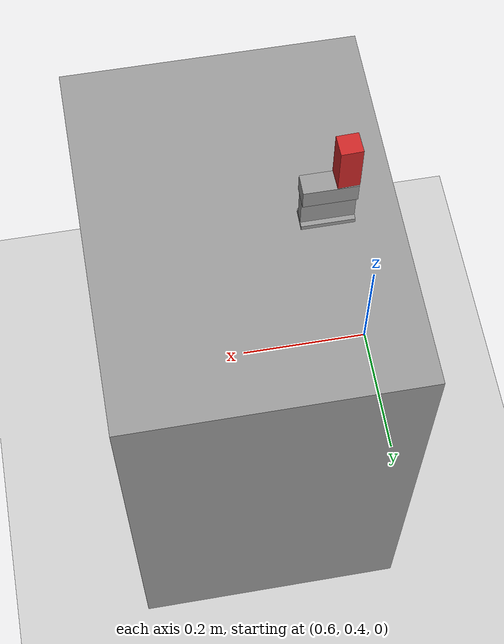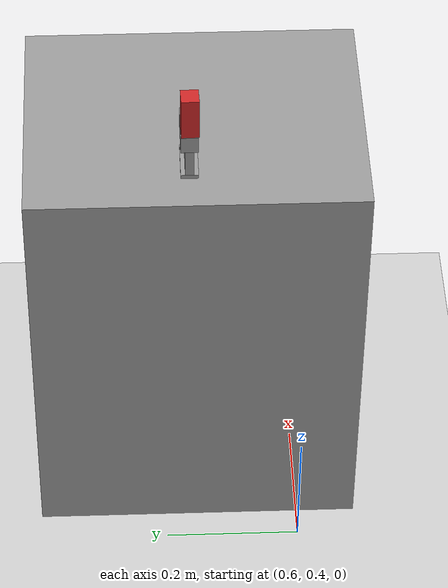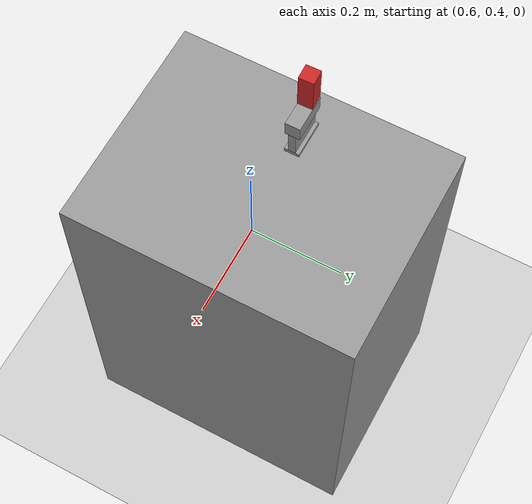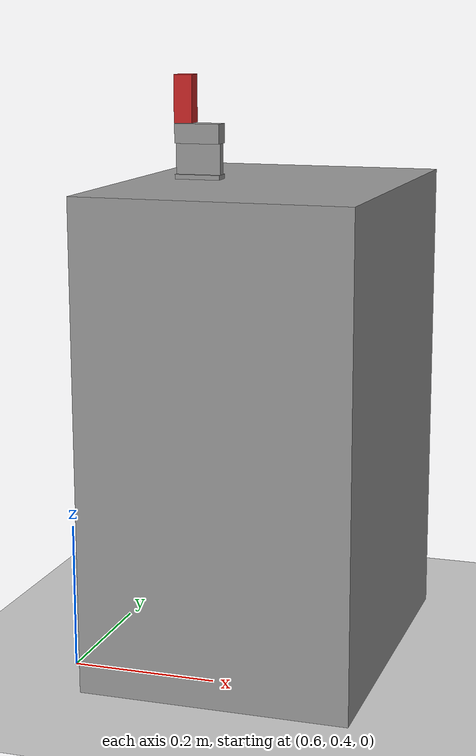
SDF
<sdf version="1.6">
 <world name="default">
  <model name="ground_plane">
   <static>1</static>
   <link name="link">
    <collision name="collision">
     <geometry><plane><normal>0 0 1</normal><size>100 100</size></plane></geometry>
     <surface><friction><ode><mu>100</mu><mu2>50</mu2></ode></friction></surface>
    </collision>
    <visual name="visual">
     <cast_shadows>0</cast_shadows>
     <geometry><plane><normal>0 0 1</normal><size>100 100</size></plane></geometry>
     <material>
      <script><uri>file://media/materials/scripts/gazebo.material</uri><name>Gazebo/Grey</name></script>
     </material>
    </visual>
   </link>
  </model>
  <light name="sun" type="directional">
   <pose>0 0 10 0 -0 0</pose>
   <diffuse>0.8 0.8 0.8 1</diffuse>
   <specular>0.2 0.2 0.2 1</specular>
   <attenuation>
    <range>1000</range>
    <constant>0.9</constant>
    <linear>0.01</linear>
    <quadratic>0.001</quadratic>
   </attenuation>
   <direction>-0.5 0.1 -0.9</direction>
  </light>
  <physics name="default_physics" default="0" type="ode">
   <real_time_update_rate>1000</real_time_update_rate>
   <max_step_size>0.001</max_step_size>
   <real_time_factor>1</real_time_factor>
  </physics>
  <gravity>0 0 -9.81</gravity>
  <magnetic_field>6e-06 2.3e-05 -4.2e-05</magnetic_field>
  <atmosphere type="adiabatic"/>
  <scene><ambient>0.4 0.4 0.4 1</ambient><background>0.7 0.7 0.7 1</background><shadows>1</shadows></scene>
  <spherical_coordinates>
   <surface_model>EARTH_WGS84</surface_model>
   <latitude_deg>0</latitude_deg>
   <longitude_deg>0</longitude_deg>
   <elevation>0</elevation>
   <heading_deg>0</heading_deg>
  </spherical_coordinates>
  <model name="table">
   <link name="link_2">
    <inertial>
     <mass>1</mass>
     <inertia>
      <ixx>0.166667</ixx>
      <ixy>0</ixy>
      <ixz>0</ixz>
      <iyy>0.166667</iyy>
      <iyz>0</iyz>
      <izz>0.166667</izz>
     </inertia>
    </inertial>
    <visual name="visual">
     <geometry><box><size>0.3683 0.4826 0.6604</size></box></geometry>
     <material>
      <lighting>1</lighting>
      <script><uri>file://media/materials/scripts/gazebo.material</uri><name>Gazebo/Grey</name></script>
      <shader type="pixel"><normal_map>__default__</normal_map></shader>
      <ambient>0.3 0.3 0.3 1</ambient>
      <diffuse>0.7 0.7 0.7 1</diffuse>
      <specular>0.01 0.01 0.01 1</specular>
      <emissive>0 0 0 1</emissive>
     </material>
    </visual>
    <collision name="collision">
     <geometry><box><size>0.3683 0.4826 0.6604</size></box></geometry>
     <surface>
      <friction>
       <ode><mu>1</mu><mu2>1</mu2><fdir1>0 0 0</fdir1><slip1>0</slip1><slip2>0</slip2></ode>
       <torsional>
        <coefficient>1</coefficient>
        <patch_radius>0</patch_radius>
        <surface_radius>0</surface_radius>
        <use_patch_radius>1</use_patch_radius>
        <ode><slip>0</slip></ode>
       </torsional>
      </friction>
      <bounce><restitution_coefficient>0</restitution_coefficient><threshold>1e+06</threshold></bounce>
      <contact>
       <collide_without_contact>0</collide_without_contact>
       <collide_without_contact_bitmask>1</collide_without_contact_bitmask>
       <collide_bitmask>1</collide_bitmask>
       <ode>
        <soft_cfm>0</soft_cfm>
        <soft_erp>0.2</soft_erp>
        <kp>1e+13</kp>
        <kd>1</kd>
        <max_vel>0.01</max_vel>
        <min_depth>0</min_depth>
       </ode>
       <bullet>
        <split_impulse>1</split_impulse>
        <split_impulse_penetration_threshold>-0.01</split_impulse_penetration_threshold>
        <soft_cfm>0</soft_cfm>
        <soft_erp>0.2</soft_erp>
        <kp>1e+13</kp>
        <kd>1</kd>
       </bullet>
      </contact>
     </surface>
    </collision>
   </link>
   <static>0</static>
   <pose>0.827633 0.552391 0.330199 0 7e-06 -7e-06</pose>
  </model>
  <model name="nerf">
   <link name="link_0">
    <inertial>
     <mass>0.0125</mass>
     <inertia>
      <ixx>6.9e-07</ixx>
      <ixy>0</ixy>
      <ixz>0</ixz>
      <iyy>4.24e-06</iyy>
      <iyz>0</iyz>
      <izz>4.85e-06</izz>
     </inertia>
    </inertial>
    <pose>-0 -0 -0.027558 0 -0 0</pose>
    <visual name="visual">
     <geometry><box><size>0.0635 0.025 0.00635</size></box></geometry>
     <material>
      <lighting>1</lighting>
      <script><uri>file://media/materials/scripts/gazebo.material</uri><name>Gazebo/Grey</name></script>
      <shader type="pixel"><normal_map>__default__</normal_map></shader>
      <ambient>0.3 0.3 0.3 1</ambient>
      <diffuse>0.7 0.7 0.7 1</diffuse>
      <specular>0.01 0.01 0.01 1</specular>
      <emissive>0 0 0 1</emissive>
     </material>
    </visual>
    <collision name="collision">
     <geometry><box><size>0.0635 0.025 0.00635</size></box></geometry>
     <surface>
      <friction>
       <ode><mu>1</mu><mu2>1</mu2><fdir1>0 0 0</fdir1><slip1>0</slip1><slip2>0</slip2></ode>
       <torsional>
        <coefficient>1</coefficient>
        <patch_radius>0</patch_radius>
        <surface_radius>0</surface_radius>
        <use_patch_radius>1</use_patch_radius>
        <ode><slip>0</slip></ode>
       </torsional>
      </friction>
      <bounce><restitution_coefficient>0</restitution_coefficient><threshold>1e+06</threshold></bounce>
      <contact>
       <collide_without_contact>0</collide_without_contact>
       <collide_without_contact_bitmask>1</collide_without_contact_bitmask>
       <collide_bitmask>1</collide_bitmask>
       <ode>
        <soft_cfm>0</soft_cfm>
        <soft_erp>0.2</soft_erp>
        <kp>1e+13</kp>
        <kd>1</kd>
        <max_vel>0.01</max_vel>
        <min_depth>0</min_depth>
       </ode>
       <bullet>
        <split_impulse>1</split_impulse>
        <split_impulse_penetration_threshold>-0.01</split_impulse_penetration_threshold>
        <soft_cfm>0</soft_cfm>
        <soft_erp>0.2</soft_erp>
        <kp>1e+13</kp>
        <kd>1</kd>
       </bullet>
      </contact>
     </surface>
    </collision>
   </link>
   <link name="link_0_0">
    <inertial>
     <mass>0.0509448</mass>
     <inertia>
      <ixx>2.042e-05</ixx>
      <ixy>0</ixy>
      <ixz>0</ixz>
      <iyy>2.051e-05</iyy>
      <iyz>0</iyz>
      <izz>5.39e-06</izz>
     </inertia>
    </inertial>
    <pose>-0.019415 -0.00061 0.077295 1e-05 6.4e-05 0.031358</pose>
    <visual name="visual">
     <geometry><box><size>0.0254 0.025 0.0647</size></box></geometry>
     <material>
      <lighting>1</lighting>
      <script><uri>file://media/materials/scripts/gazebo.material</uri><name>Gazebo/Red</name></script>
      <shader type="pixel"><normal_map>__default__</normal_map></shader>
      <ambient>0.3 0.3 0.3 1</ambient>
      <diffuse>0.7 0.7 0.7 1</diffuse>
      <specular>0.01 0.01 0.01 1</specular>
      <emissive>0 0 0 1</emissive>
     </material>
    </visual>
    <collision name="collision">
     <geometry><box><size>0.0254 0.025 0.0647</size></box></geometry>
     <surface>
      <friction>
       <ode><mu>1</mu><mu2>1</mu2><fdir1>0 0 0</fdir1><slip1>0</slip1><slip2>0</slip2></ode>
       <torsional>
        <coefficient>1</coefficient>
        <patch_radius>0</patch_radius>
        <surface_radius>0</surface_radius>
        <use_patch_radius>1</use_patch_radius>
        <ode><slip>0</slip></ode>
       </torsional>
      </friction>
      <bounce><restitution_coefficient>0</restitution_coefficient><threshold>1e+06</threshold></bounce>
      <contact>
       <collide_without_contact>0</collide_without_contact>
       <collide_without_contact_bitmask>1</collide_without_contact_bitmask>
       <collide_bitmask>1</collide_bitmask>
       <ode>
        <soft_cfm>0</soft_cfm>
        <soft_erp>0.2</soft_erp>
        <kp>1e+13</kp>
        <kd>1</kd>
        <max_vel>0.01</max_vel>
        <min_depth>0</min_depth>
       </ode>
       <bullet>
        <split_impulse>1</split_impulse>
        <split_impulse_penetration_threshold>-0.01</split_impulse_penetration_threshold>
        <soft_cfm>0</soft_cfm>
        <soft_erp>0.2</soft_erp>
        <kp>1e+13</kp>
        <kd>1</kd>
       </bullet>
      </contact>
     </surface>
    </collision>
   </link>
   <link name="link_1">
    <inertial>
     <mass>0.0413385</mass>
     <inertia>
      <ixx>6.62e-06</ixx>
      <ixy>0</ixy>
      <ixz>0</ixz>
      <iyy>1.997e-05</iyy>
      <iyz>0</iyz>
      <izz>1.443e-05</izz>
     </inertia>
    </inertial>
    <pose>0 -0 -0.003383 0 -0 0</pose>
    <visual name="visual">
     <geometry><box><size>0.0635 0.0125 0.042</size></box></geometry>
     <material>
      <lighting>1</lighting>
      <script><uri>file://media/materials/scripts/gazebo.material</uri><name>Gazebo/Grey</name></script>
      <shader type="pixel"><normal_map>__default__</normal_map></shader>
      <emissive>0 0 0 1</emissive>
      <ambient>0.3 0.3 0.3 1</ambient>
      <diffuse>0.7 0.7 0.7 1</diffuse>
      <specular>0.01 0.01 0.01 1</specular>
     </material>
    </visual>
    <collision name="collision">
     <geometry><box><size>0.0635 0.0125 0.042</size></box></geometry>
     <surface>
      <friction>
       <ode><mu>1</mu><mu2>1</mu2><fdir1>0 0 0</fdir1><slip1>0</slip1><slip2>0</slip2></ode>
       <torsional>
        <coefficient>1</coefficient>
        <patch_radius>0</patch_radius>
        <surface_radius>0</surface_radius>
        <use_patch_radius>1</use_patch_radius>
        <ode><slip>0</slip></ode>
       </torsional>
      </friction>
      <bounce><restitution_coefficient>0</restitution_coefficient><threshold>1e+06</threshold></bounce>
      <contact>
       <collide_without_contact>0</collide_without_contact>
       <collide_without_contact_bitmask>1</collide_without_contact_bitmask>
       <collide_bitmask>1</collide_bitmask>
       <ode>
        <soft_cfm>0</soft_cfm>
        <soft_erp>0.2</soft_erp>
        <kp>1e+13</kp>
        <kd>1</kd>
        <max_vel>0.01</max_vel>
        <min_depth>0</min_depth>
       </ode>
       <bullet>
        <split_impulse>1</split_impulse>
        <split_impulse_penetration_threshold>-0.01</split_impulse_penetration_threshold>
        <soft_cfm>0</soft_cfm>
        <soft_erp>0.2</soft_erp>
        <kp>1e+13</kp>
        <kd>1</kd>
       </bullet>
      </contact>
     </surface>
    </collision>
   </link>
   <link name="link_2">
    <inertial>
     <mass>0.0524605</mass>
     <inertia>
      <ixx>5.84e-06</ixx>
      <ixy>0</ixy>
      <ixz>0</ixz>
      <iyy>2.073e-05</iyy>
      <iyz>0</iyz>
      <izz>2.036e-05</izz>
     </inertia>
    </inertial>
    <pose>0 -0 0.030942 0 -0 0</pose>
    <visual name="visual">
     <geometry><box><size>0.0635 0.025 0.02665</size></box></geometry>
     <material>
      <lighting>1</lighting>
      <script><uri>file://media/materials/scripts/gazebo.material</uri><name>Gazebo/Grey</name></script>
      <shader type="pixel"><normal_map>__default__</normal_map></shader>
      <ambient>0.3 0.3 0.3 1</ambient>
      <diffuse>0.7 0.7 0.7 1</diffuse>
      <specular>0.01 0.01 0.01 1</specular>
      <emissive>0 0 0 1</emissive>
     </material>
    </visual>
    <collision name="collision">
     <geometry><box><size>0.0635 0.025 0.02665</size></box></geometry>
     <surface>
      <friction>
       <ode><mu>1</mu><mu2>1</mu2><fdir1>0 0 0</fdir1><slip1>0</slip1><slip2>0</slip2></ode>
       <torsional>
        <coefficient>1</coefficient>
        <patch_radius>0</patch_radius>
        <surface_radius>0</surface_radius>
        <use_patch_radius>1</use_patch_radius>
        <ode><slip>0</slip></ode>
       </torsional>
      </friction>
      <bounce><restitution_coefficient>0</restitution_coefficient><threshold>1e+06</threshold></bounce>
      <contact>
       <collide_without_contact>0</collide_without_contact>
       <collide_without_contact_bitmask>1</collide_without_contact_bitmask>
       <collide_bitmask>1</collide_bitmask>
       <ode>
        <soft_cfm>0</soft_cfm>
        <soft_erp>0.2</soft_erp>
        <kp>1e+13</kp>
        <kd>1</kd>
        <max_vel>0.01</max_vel>
        <min_depth>0</min_depth>
       </ode>
       <bullet>
        <split_impulse>1</split_impulse>
        <split_impulse_penetration_threshold>-0.01</split_impulse_penetration_threshold>
        <soft_cfm>0</soft_cfm>
        <soft_erp>0.2</soft_erp>
        <kp>1e+13</kp>
        <kd>1</kd>
       </bullet>
      </contact>
     </surface>
    </collision>
   </link>
   <joint name="link_0_JOINT_0" type="fixed">
    <parent>link_0</parent>
    <child>link_1</child>
    <physics>
     <ode><limit><cfm>0</cfm><erp>0.2</erp></limit><suspension><cfm>0</cfm><erp>0.2</erp></suspension></ode>
    </physics>
   </joint>
   <joint name="link_1_JOINT_3" type="fixed">
    <parent>link_1</parent>
    <child>link_2</child>
    <physics>
     <ode><limit><cfm>0</cfm><erp>0.2</erp></limit><suspension><cfm>0</cfm><erp>0.2</erp></suspension></ode>
    </physics>
   </joint>
   <joint name="link_2_JOINT_2" type="fixed">
    <parent>link_2</parent>
    <child>link_0_0</child>
    <physics>
     <ode><limit><cfm>0</cfm><erp>0.2</erp></limit><suspension><cfm>0</cfm><erp>0.2</erp></suspension></ode>
    </physics>
   </joint>
   <static>0</static>
   <pose>0.729952 0.562398 0.69113 0 -0 0</pose>
  </model>
 </world>
</sdf>
